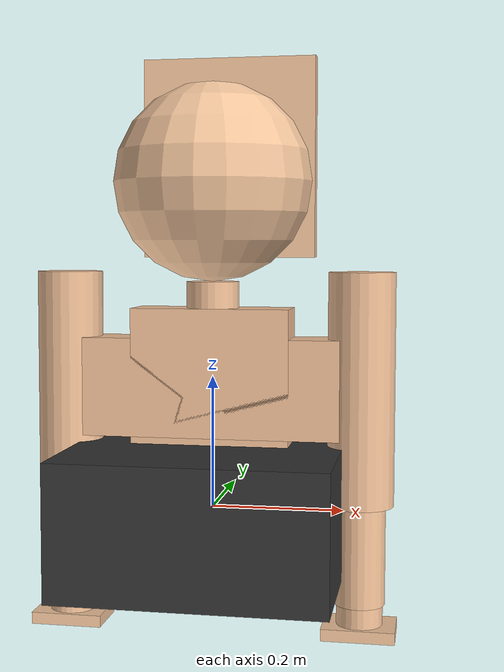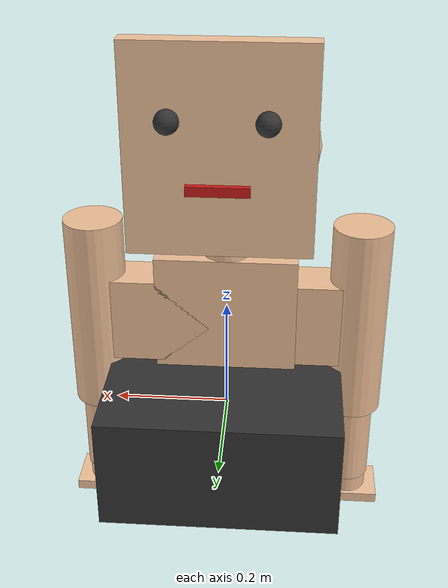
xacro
<?xml version="1.0"?>
<robot name="humanoid_upper_body" xmlns:xacro="http://wiki.ros.org/xacro">

  <!-- ==================== BODY DIMENSIONS ==================== -->
  <!-- Head -->
  <xacro:property name="head_radius" value="0.15" />
  <xacro:property name="face_width" value="0.28" />
  <xacro:property name="face_height" value="0.32" />
  <xacro:property name="face_depth" value="0.03" />

  <!-- Neck -->
  <xacro:property name="neck_length" value="0.12" />
  <xacro:property name="neck_radius" value="0.04" />

  <!-- Shoulders -->
  <xacro:property name="shoulder_width" value="0.45" />
  <xacro:property name="shoulder_depth" value="0.15" />
  <xacro:property name="shoulder_height" value="0.08" />

  <!-- Torso -->
  <xacro:property name="torso_width" value="0.40" />
  <xacro:property name="torso_height" value="0.45" />
  <xacro:property name="torso_depth" value="0.20" />

  <!-- Arms -->
  <xacro:property name="upper_arm_length" value="0.35" />
  <xacro:property name="upper_arm_radius" value="0.05" />
  <xacro:property name="forearm_length" value="0.30" />
  <xacro:property name="forearm_radius" value="0.038" />
  <xacro:property name="wrist_length" value="0.08" />
  <xacro:property name="wrist_radius" value="0.035" />

  <!-- Hand palm dimensions (matching enhanced_hand_controller) -->
  <xacro:property name="hand_width"  value="0.082" />
  <xacro:property name="hand_length" value="0.110" />
  <xacro:property name="hand_height" value="0.018" />

  <!-- ==================== MATERIALS ==================== -->
  <material name="skin_face">
    <color rgba="0.96 0.78 0.62 1.0"/>  <!-- Light skin tone -->
  </material>

  <material name="skin_body">
    <color rgba="0.95 0.76 0.60 1.0"/>  <!-- Slightly darker skin -->
  </material>

  <material name="skin_hand">
    <color rgba="0.96 0.78 0.62 1.0"/>  <!-- Hand skin tone -->
  </material>

  <material name="clothing_torso">
    <color rgba="0.2 0.2 0.2 1.0"/>  <!-- Dark gray shirt -->
  </material>

  <material name="eyes">
    <color rgba="0.2 0.2 0.2 1.0"/>  <!-- Dark eyes -->
  </material>

  <material name="mouth">
    <color rgba="0.8 0.1 0.1 1.0"/>  <!-- Red mouth -->
  </material>

  <!-- ==================== WORLD LINK ==================== -->
  <link name="world">
    <inertial>
      <mass value="0.001"/>
      <inertia ixx="0.000001" ixy="0" ixz="0" iyy="0.000001" iyz="0" izz="0.000001"/>
      <origin xyz="0 0 0" rpy="0 0 0"/>
    </inertial>
  </link>

  <!-- ==================== TORSO (MAIN BODY) ==================== -->
  <link name="torso">
    <!-- Main chest box (clothing) -->
    <visual>
      <geometry>
        <box size="${torso_width} ${torso_height} ${torso_depth}"/>
      </geometry>
      <material name="clothing_torso"/>
      <origin xyz="0 0 0" rpy="0 0 0"/>
    </visual>

    <!-- Chest highlight (skin at neckline) -->
    <visual>
      <geometry>
        <box size="${torso_width * 0.6} 0.08 ${torso_depth * 1.2}"/>
      </geometry>
      <material name="skin_body"/>
      <origin xyz="0 0 ${torso_height/2 - 0.04}" rpy="0 0 0"/>
    </visual>

    <collision>
      <geometry>
        <box size="${torso_width} ${torso_height} ${torso_depth}"/>
      </geometry>
      <origin xyz="0 0 0" rpy="0 0 0"/>
    </collision>

    <inertial>
      <mass value="5.0"/>
      <inertia ixx="0.2" ixy="0" ixz="0" iyy="0.2" iyz="0" izz="0.15"/>
      <origin xyz="0 0 0" rpy="0 0 0"/>
    </inertial>
  </link>

  <!-- Torso to world joint -->
  <joint name="torso_joint" type="fixed">
    <parent link="world"/>
    <child link="torso"/>
    <origin xyz="0 0 0" rpy="0 0 0"/>
  </joint>

  <!-- ==================== NECK ==================== -->
  <link name="neck">
    <!-- Neck cylinder (skin tone) -->
    <visual>
      <geometry>
        <cylinder radius="${neck_radius}" length="${neck_length}"/>
      </geometry>
      <material name="skin_body"/>
      <origin xyz="0 0 0" rpy="0 0 0"/>
    </visual>

    <collision>
      <geometry>
        <cylinder radius="${neck_radius}" length="${neck_length}"/>
      </geometry>
      <origin xyz="0 0 0" rpy="0 0 0"/>
    </collision>

    <inertial>
      <mass value="0.5"/>
      <inertia ixx="0.01" ixy="0" ixz="0" iyy="0.01" iyz="0" izz="0.005"/>
      <origin xyz="0 0 0" rpy="0 0 0"/>
    </inertial>
  </link>

  <!-- Neck joint -->
  <joint name="neck_joint" type="fixed">
    <parent link="torso"/>
    <child link="neck"/>
    <origin xyz="0 0 ${torso_height/2 + neck_length/2}" rpy="0 0 0"/>
  </joint>

  <!-- ==================== HEAD ==================== -->
  <link name="head">
    <!-- Head sphere -->
    <visual>
      <geometry>
        <sphere radius="${head_radius}"/>
      </geometry>
      <material name="skin_face"/>
      <origin xyz="0 0 0" rpy="0 0 0"/>
    </visual>

    <!-- Face plate (forward in +X) -->
    <visual>
      <geometry>
        <box size="${face_width} ${face_height} ${face_depth}"/>
      </geometry>
      <material name="skin_face"/>
      <origin xyz="0 0.150 ${head_radius - face_depth/2 - 0.090}" rpy="1.5708 0 0"/>
    </visual>

    <!-- Left eye -->
    <visual>
      <geometry>
        <sphere radius="0.018"/>
      </geometry>
      <material name="eyes"/>
      <origin xyz="${face_width/4} 0.19 ${head_radius + -0.050}" rpy="0 0 0"/>
    </visual>

    <!-- Right eye -->
    <visual>
      <geometry>
        <sphere radius="0.018"/>
      </geometry>
      <material name="eyes"/>
      <origin xyz="${-face_width/4} 0.19 ${head_radius + -0.050}" rpy="0 0 0"/>
    </visual>

    <!-- Mouth -->
    <visual>
      <geometry>
        <box size="${face_width/3} 0.01 0.015"/>
      </geometry>
      <material name="mouth"/>
      <origin xyz="0 0.19 ${head_radius - 0.15}" rpy="0 0 0"/>
    </visual>

    <collision>
      <geometry>
        <sphere radius="${head_radius}"/>
      </geometry>
      <origin xyz="0 0 0" rpy="0 0 0"/>
    </collision>

    <inertial>
      <mass value="3.0"/>
      <inertia ixx="0.08" ixy="0" ixz="0" iyy="0.08" iyz="0" izz="0.08"/>
      <origin xyz="0 0 0" rpy="0 0 0"/>
    </inertial>
  </link>

  <!-- Head joint -->
  <joint name="head_joint" type="fixed">
    <parent link="neck"/>
    <child link="head"/>
    <origin xyz="0 0 ${neck_length/2 + head_radius}" rpy="0 0 0"/>
  </joint>

  <!-- ==================== SHOULDERS ==================== -->
  <link name="shoulders">
    <!-- Shoulder bar connecting both arms -->
    <visual>
      <geometry>
        <box size="${shoulder_width} ${shoulder_height} ${shoulder_depth}"/>
      </geometry>
      <material name="skin_body"/>
      <origin xyz="0 0 0" rpy="0 0 0"/>
    </visual>

    <collision>
      <geometry>
        <box size="${shoulder_width} ${shoulder_height} ${shoulder_depth}"/>
      </geometry>
      <origin xyz="0 0 0" rpy="0 0 0"/>
    </collision>

    <inertial>
      <mass value="1.0"/>
      <inertia ixx="0.02" ixy="0" ixz="0" iyy="0.05" iyz="0" izz="0.05"/>
      <origin xyz="0 0 0" rpy="0 0 0"/>
    </inertial>
  </link>

  <!-- Shoulders joint -->
  <joint name="shoulders_joint" type="fixed">
    <parent link="torso"/>
    <child link="shoulders"/>
    <origin xyz="0 0 ${torso_height/2 - shoulder_height/2}" rpy="0 0 0"/>
  </joint>

  <!-- ==================== LEFT ARM ==================== -->
  <!-- Left upper arm -->
  <link name="left_upper_arm">
    <visual>
      <geometry>
        <cylinder radius="${upper_arm_radius}" length="${upper_arm_length}"/>
      </geometry>
      <material name="skin_body"/>
      <origin xyz="0 0 0" rpy="0 0 0"/>
    </visual>

    <collision>
      <geometry>
        <cylinder radius="${upper_arm_radius}" length="${upper_arm_length}"/>
      </geometry>
      <origin xyz="0 0 0" rpy="0 0 0"/>
    </collision>

    <inertial>
      <mass value="2.0"/>
      <inertia ixx="0.01" ixy="0" ixz="0" iyy="0.01" iyz="0" izz="0.005"/>
      <origin xyz="0 0 0" rpy="0 0 0"/>
    </inertial>
  </link>

  <!-- Left upper arm joint -->
  <joint name="left_shoulder_joint" type="fixed">
    <parent link="shoulders"/>
    <child link="left_upper_arm"/>
    <origin xyz="${shoulder_width/2} 0 0" rpy="0 0 0"/>
  </joint>

  <!-- Left forearm -->
  <link name="left_forearm">
    <visual>
      <geometry>
        <cylinder radius="${forearm_radius}" length="${forearm_length}"/>
      </geometry>
      <material name="skin_body"/>
      <origin xyz="0 0 0" rpy="0 0 0"/>
    </visual>

    <collision>
      <geometry>
        <cylinder radius="${forearm_radius}" length="${forearm_length}"/>
      </geometry>
      <origin xyz="0 0 0" rpy="0 0 0"/>
    </collision>

    <inertial>
      <mass value="1.5"/>
      <inertia ixx="0.008" ixy="0" ixz="0" iyy="0.008" iyz="0" izz="0.003"/>
      <origin xyz="0 0 0" rpy="0 0 0"/>
    </inertial>
  </link>

  <!-- Left elbow joint -->
  <joint name="left_elbow_joint" type="fixed">
    <parent link="left_upper_arm"/>
    <child link="left_forearm"/>
    <origin xyz="0 0 ${-upper_arm_length/2}" rpy="0 0 0"/>
  </joint>

  <!-- Left wrist -->
  <link name="left_wrist">
    <visual>
      <geometry>
        <cylinder radius="${wrist_radius}" length="${wrist_length}"/>
      </geometry>
      <material name="skin_body"/>
      <origin xyz="0 0 0" rpy="0 0 0"/>
    </visual>

    <collision>
      <geometry>
        <cylinder radius="${wrist_radius}" length="${wrist_length}"/>
      </geometry>
      <origin xyz="0 0 0" rpy="0 0 0"/>
    </collision>

    <inertial>
      <mass value="0.5"/>
      <inertia ixx="0.002" ixy="0" ixz="0" iyy="0.002" iyz="0" izz="0.001"/>
      <origin xyz="0 0 0" rpy="0 0 0"/>
    </inertial>
  </link>

  <!-- Left wrist joint -->
  <joint name="left_wrist_joint" type="fixed">
    <parent link="left_forearm"/>
    <child link="left_wrist"/>
    <origin xyz="0 0 ${-forearm_length/2}" rpy="0 0 0"/>
  </joint>

  <!-- Left hand base (palm) -->
  <link name="left_hand_base">
    <visual>
      <geometry>
        <box size="${hand_length} ${hand_width} ${hand_height}"/>
      </geometry>
      <material name="skin_hand"/>
      <origin xyz="0 0 0" rpy="0 0 0"/>
    </visual>

    <collision>
      <geometry>
        <box size="${hand_length} ${hand_width} ${hand_height}"/>
      </geometry>
      <origin xyz="0 0 0" rpy="0 0 0"/>
    </collision>

    <inertial>
      <mass value="0.6"/>
      <inertia ixx="0.001" ixy="0" ixz="0" iyy="0.001" iyz="0" izz="0.001"/>
      <origin xyz="0 0 0" rpy="0 0 0"/>
    </inertial>
  </link>

  <!-- Left hand joint -->
  <joint name="left_hand_joint" type="fixed">
    <parent link="left_wrist"/>
    <child link="left_hand_base"/>
    <origin xyz="0 0 ${-wrist_length/2}" rpy="0 0 0"/>
  </joint>

  <!-- ==================== RIGHT ARM ==================== -->
  <!-- Right upper arm -->
  <link name="right_upper_arm">
    <visual>
      <geometry>
        <cylinder radius="${upper_arm_radius}" length="${upper_arm_length}"/>
      </geometry>
      <material name="skin_body"/>
      <origin xyz="0 0 0" rpy="0 0 0"/>
    </visual>

    <collision>
      <geometry>
        <cylinder radius="${upper_arm_radius}" length="${upper_arm_length}"/>
      </geometry>
      <origin xyz="0 0 0" rpy="0 0 0"/>
    </collision>

    <inertial>
      <mass value="2.0"/>
      <inertia ixx="0.01" ixy="0" ixz="0" iyy="0.01" iyz="0" izz="0.005"/>
      <origin xyz="0 0 0" rpy="0 0 0"/>
    </inertial>
  </link>

  <!-- Right upper arm joint -->
  <joint name="right_shoulder_joint" type="fixed">
    <parent link="shoulders"/>
    <child link="right_upper_arm"/>
    <origin xyz="${-shoulder_width/2} 0 0" rpy="0 0 0"/>
  </joint>

  <!-- Right forearm -->
  <link name="right_forearm">
    <visual>
      <geometry>
        <cylinder radius="${forearm_radius}" length="${forearm_length}"/>
      </geometry>
      <material name="skin_body"/>
      <origin xyz="0 0 0" rpy="0 0 0"/>
    </visual>

    <collision>
      <geometry>
        <cylinder radius="${forearm_radius}" length="${forearm_length}"/>
      </geometry>
      <origin xyz="0 0 0" rpy="0 0 0"/>
    </collision>

    <inertial>
      <mass value="1.5"/>
      <inertia ixx="0.008" ixy="0" ixz="0" iyy="0.008" iyz="0" izz="0.003"/>
      <origin xyz="0 0 0" rpy="0 0 0"/>
    </inertial>
  </link>

  <!-- Right elbow joint -->
  <joint name="right_elbow_joint" type="fixed">
    <parent link="right_upper_arm"/>
    <child link="right_forearm"/>
    <origin xyz="0 0 ${-upper_arm_length/2}" rpy="0 0 0"/>
  </joint>

  <!-- Right wrist -->
  <link name="right_wrist">
    <visual>
      <geometry>
        <cylinder radius="${wrist_radius}" length="${wrist_length}"/>
      </geometry>
      <material name="skin_body"/>
      <origin xyz="0 0 0" rpy="0 0 0"/>
    </visual>

    <collision>
      <geometry>
        <cylinder radius="${wrist_radius}" length="${wrist_length}"/>
      </geometry>
      <origin xyz="0 0 0" rpy="0 0 0"/>
    </collision>

    <inertial>
      <mass value="0.5"/>
      <inertia ixx="0.002" ixy="0" ixz="0" iyy="0.002" iyz="0" izz="0.001"/>
      <origin xyz="0 0 0" rpy="0 0 0"/>
    </inertial>
  </link>

  <!-- Right wrist joint -->
  <joint name="right_wrist_joint" type="fixed">
    <parent link="right_forearm"/>
    <child link="right_wrist"/>
    <origin xyz="0 0 ${-forearm_length/2}" rpy="0 0 0"/>
  </joint>

  <!-- Right hand base (palm) -->
  <link name="right_hand_base">
    <visual>
      <geometry>
        <box size="${hand_length} ${hand_width} ${hand_height}"/>
      </geometry>
      <material name="skin_hand"/>
      <origin xyz="0 0 0" rpy="0 0 0"/>
    </visual>

    <collision>
      <geometry>
        <box size="${hand_length} ${hand_width} ${hand_height}"/>
      </geometry>
      <origin xyz="0 0 0" rpy="0 0 0"/>
    </collision>

    <inertial>
      <mass value="0.6"/>
      <inertia ixx="0.001" ixy="0" ixz="0" iyy="0.001" iyz="0" izz="0.001"/>
      <origin xyz="0 0 0" rpy="0 0 0"/>
    </inertial>
  </link>

  <!-- Right hand joint -->
  <joint name="right_hand_joint" type="fixed">
    <parent link="right_wrist"/>
    <child link="right_hand_base"/>
    <origin xyz="0 0 ${-wrist_length/2}" rpy="0 0 0"/>
  </joint>

</robot>
